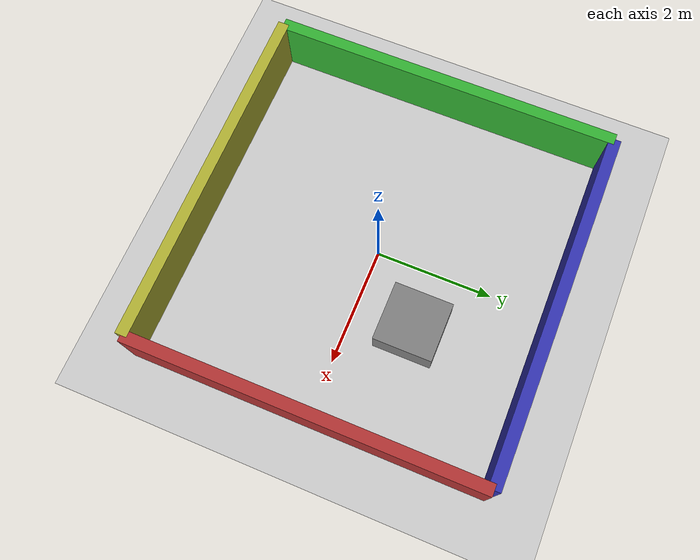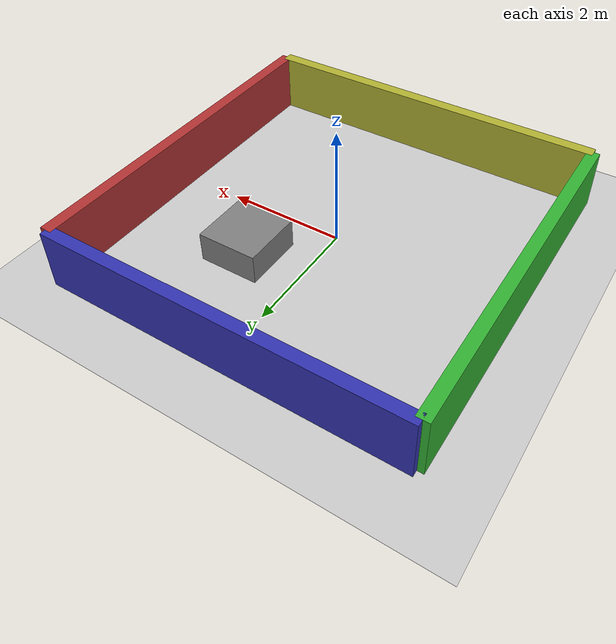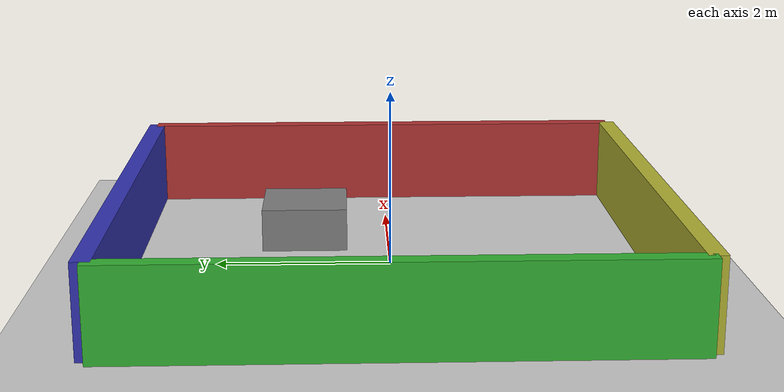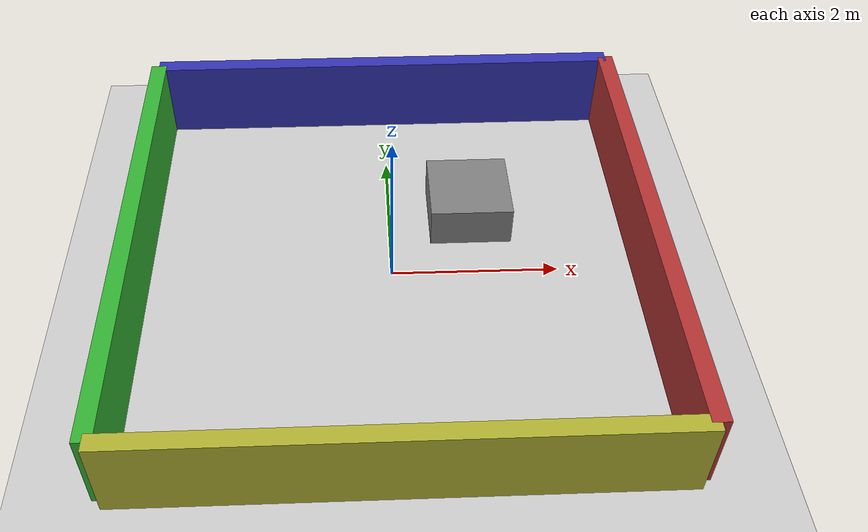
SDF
<?xml version="1.0" ?>
<sdf version="1.6">
  <world name="slam_test">
    <physics name="1ms" type="ignored">
      <max_step_size>0.001</max_step_size>
      <real_time_factor>1.0</real_time_factor>
    </physics>

    <plugin filename="gz-sim-physics-system" name="gz::sim::systems::Physics"/>
    <plugin filename="gz-sim-user-commands-system" name="gz::sim::systems::UserCommands"/>
    <plugin filename="gz-sim-scene-broadcaster-system" name="gz::sim::systems::SceneBroadcaster"/>

    <light type="directional" name="sun">
      <cast_shadows>true</cast_shadows>
      <pose>0 0 10 0 0 0</pose>
      <diffuse>1 1 1 1</diffuse>
      <specular>0.5 0.5 0.5 1</specular>
      <attenuation>
        <range>1000</range>
        <constant>0.9</constant>
        <linear>0.01</linear>
        <quadratic>0.001</quadratic>
      </attenuation>
      <direction>-0.5 0.1 -0.9</direction>
    </light>

    <!-- Ground Plane -->
    <model name="ground_plane">
      <static>true</static>
      <link name="link">
        <collision name="collision">
          <geometry>
            <plane>
              <normal>0 0 1</normal>
            </plane>
          </geometry>
        </collision>
        <visual name="visual">
          <geometry>
            <plane>
              <normal>0 0 1</normal>
              <size>100 100</size>
            </plane>
          </geometry>
          <material>
            <ambient>0.8 0.8 0.8 1</ambient>
            <diffuse>0.8 0.8 0.8 1</diffuse>
          </material>
        </visual>
      </link>
    </model>

    <!-- Wall 1 - Front -->
    <model name="wall_1">
      <static>true</static>
      <pose>3 0 0.5 0 0 0</pose>
      <link name="link">
        <collision name="collision">
          <geometry>
            <box>
              <size>0.2 6 1</size>
            </box>
          </geometry>
        </collision>
        <visual name="visual">
          <geometry>
            <box>
              <size>0.2 6 1</size>
            </box>
          </geometry>
          <material>
            <ambient>0.7 0.2 0.2 1</ambient>
            <diffuse>0.7 0.2 0.2 1</diffuse>
          </material>
        </visual>
      </link>
    </model>

    <!-- Wall 2 - Back -->
    <model name="wall_2">
      <static>true</static>
      <pose>-3 0 0.5 0 0 0</pose>
      <link name="link">
        <collision name="collision">
          <geometry>
            <box>
              <size>0.2 6 1</size>
            </box>
          </geometry>
        </collision>
        <visual name="visual">
          <geometry>
            <box>
              <size>0.2 6 1</size>
            </box>
          </geometry>
          <material>
            <ambient>0.2 0.7 0.2 1</ambient>
            <diffuse>0.2 0.7 0.2 1</diffuse>
          </material>
        </visual>
      </link>
    </model>

    <!-- Wall 3 - Left -->
    <model name="wall_3">
      <static>true</static>
      <pose>0 3 0.5 0 0 0</pose>
      <link name="link">
        <collision name="collision">
          <geometry>
            <box>
              <size>6 0.2 1</size>
            </box>
          </geometry>
        </collision>
        <visual name="visual">
          <geometry>
            <box>
              <size>6 0.2 1</size>
            </box>
          </geometry>
          <material>
            <ambient>0.2 0.2 0.7 1</ambient>
            <diffuse>0.2 0.2 0.7 1</diffuse>
          </material>
        </visual>
      </link>
    </model>

    <!-- Wall 4 - Right -->
    <model name="wall_4">
      <static>true</static>
      <pose>0 -3 0.5 0 0 0</pose>
      <link name="link">
        <collision name="collision">
          <geometry>
            <box>
              <size>6 0.2 1</size>
            </box>
          </geometry>
        </collision>
        <visual name="visual">
          <geometry>
            <box>
              <size>6 0.2 1</size>
            </box>
          </geometry>
          <material>
            <ambient>0.7 0.7 0.2 1</ambient>
            <diffuse>0.7 0.7 0.2 1</diffuse>
          </material>
        </visual>
      </link>
    </model>

    <!-- Center Obstacle -->
    <model name="box_obstacle">
      <static>true</static>
      <pose>1 1 0.25 0 0 0</pose>
      <link name="link">
        <collision name="collision">
          <geometry>
            <box>
              <size>1 1 0.5</size>
            </box>
          </geometry>
        </collision>
        <visual name="visual">
          <geometry>
            <box>
              <size>1 1 0.5</size>
            </box>
          </geometry>
          <material>
            <ambient>0.5 0.5 0.5 1</ambient>
            <diffuse>0.5 0.5 0.5 1</diffuse>
          </material>
        </visual>
      </link>
    </model>

  </world>
</sdf>
